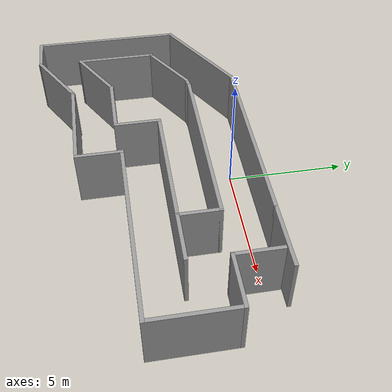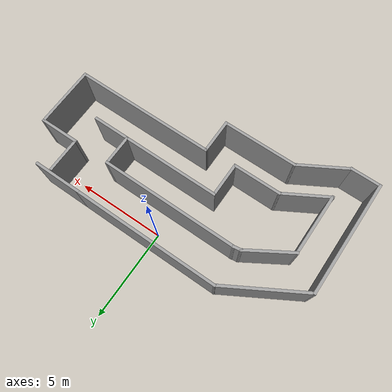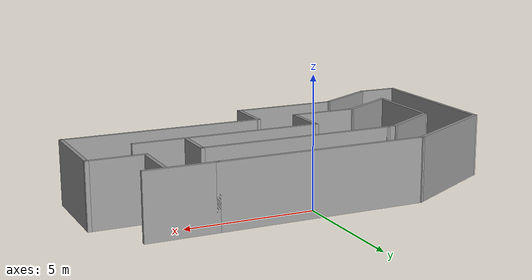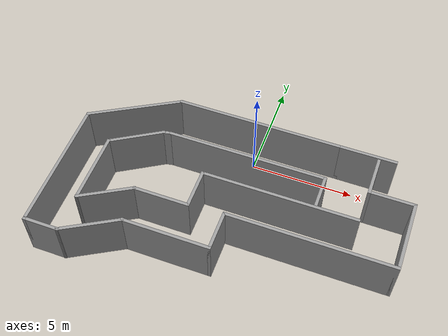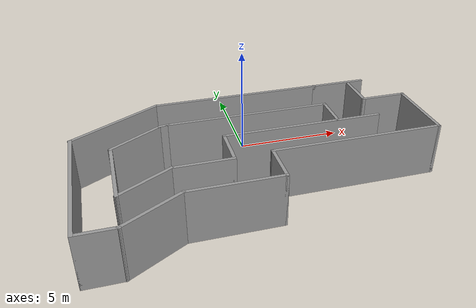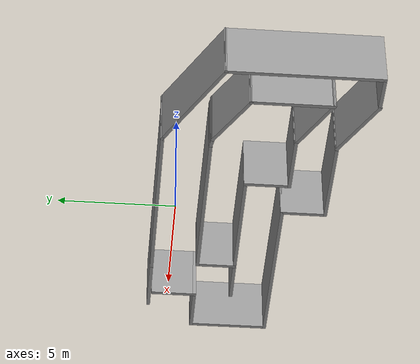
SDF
<sdf version='1.6'>
    <model name='Circuit_ql_2'>
      <pose frame=''>-0.070869 -3.52461 0 0 -0 0</pose>
      <link name='Wall_24'>
        <collision name='Wall_24_Collision'>
          <geometry>
            <box>
              <size>8.25 0.15 2.5</size>
            </box>
          </geometry>
          <pose frame=''>0 0 1.25 0 -0 0</pose>
          <max_contacts>10</max_contacts>
          <surface>
            <contact>
              <ode/>
            </contact>
            <bounce/>
            <friction>
              <torsional>
                <ode/>
              </torsional>
              <ode/>
            </friction>
          </surface>
        </collision>
        <visual name='Wall_24_Visual'>
          <pose frame=''>0 0 1.25 0 -0 0</pose>
          <geometry>
            <box>
              <size>8.25 0.15 2.5</size>
            </box>
          </geometry>
          <material>
            <script>
              <uri>file://media/materials/scripts/gazebo.material</uri>
              <name>Gazebo/Grey</name>
            </script>
            <ambient>1 1 1 1</ambient>
          </material>
        </visual>
        <pose frame=''>0.038358 4.325 0 0 -0 0</pose>
        <self_collide>0</self_collide>
        <kinematic>0</kinematic>
        <gravity>1</gravity>
      </link>
      <link name='Wall_28'>
        <collision name='Wall_28_Collision'>
          <geometry>
            <box>
              <size>4.75 0.15 2.5</size>
            </box>
          </geometry>
          <pose frame=''>0 0 1.25 0 -0 0</pose>
          <max_contacts>10</max_contacts>
          <surface>
            <contact>
              <ode/>
            </contact>
            <bounce/>
            <friction>
              <torsional>
                <ode/>
              </torsional>
              <ode/>
            </friction>
          </surface>
        </collision>
        <visual name='Wall_28_Visual'>
          <pose frame=''>0 0 1.25 0 -0 0</pose>
          <geometry>
            <box>
              <size>4.75 0.15 2.5</size>
            </box>
          </geometry>
          <material>
            <script>
              <uri>file://media/materials/scripts/gazebo.material</uri>
              <name>Gazebo/Grey</name>
            </script>
            <ambient>1 1 1 1</ambient>
          </material>
        </visual>
        <pose frame=''>-6.0035 3.175 0 0 0 -2.61799</pose>
        <self_collide>0</self_collide>
        <kinematic>0</kinematic>
        <gravity>1</gravity>
      </link>
      <link name='Wall_39'>
        <collision name='Wall_39_Collision'>
          <geometry>
            <box>
              <size>2.75 0.15 2.5</size>
            </box>
          </geometry>
          <pose frame=''>0 0 1.25 0 -0 0</pose>
          <max_contacts>10</max_contacts>
          <surface>
            <contact>
              <ode/>
            </contact>
            <bounce/>
            <friction>
              <torsional>
                <ode/>
              </torsional>
              <ode/>
            </friction>
          </surface>
        </collision>
        <visual name='Wall_39_Visual'>
          <pose frame=''>0 0 1.25 0 -0 0</pose>
          <geometry>
            <box>
              <size>2.75 0.15 2.5</size>
            </box>
          </geometry>
          <material>
            <script>
              <uri>file://media/materials/scripts/gazebo.material</uri>
              <name>Gazebo/Grey</name>
            </script>
            <ambient>1 1 1 1</ambient>
          </material>
        </visual>
        <pose frame=''>5.38836 4.325 0 0 -0 0</pose>
        <self_collide>0</self_collide>
        <kinematic>0</kinematic>
        <gravity>1</gravity>
      </link>
      <link name='Wall_41'>
        <collision name='Wall_41_Collision'>
          <geometry>
            <box>
              <size>6.5 0.15 2.5</size>
            </box>
          </geometry>
          <pose frame=''>0 0 1.25 0 -0 0</pose>
          <max_contacts>10</max_contacts>
          <surface>
            <contact>
              <ode/>
            </contact>
            <bounce/>
            <friction>
              <torsional>
                <ode/>
              </torsional>
              <ode/>
            </friction>
          </surface>
        </collision>
        <visual name='Wall_41_Visual'>
          <pose frame=''>0 0 1.25 0 -0 0</pose>
          <geometry>
            <box>
              <size>6.5 0.15 2.5</size>
            </box>
          </geometry>
          <material>
            <script>
              <uri>file://media/materials/scripts/gazebo.material</uri>
              <name>Gazebo/Grey</name>
            </script>
            <ambient>1 1 1 1</ambient>
          </material>
        </visual>
        <pose frame=''>-7.99536 -1.15 0 0 0 -1.5708</pose>
        <self_collide>0</self_collide>
        <kinematic>0</kinematic>
        <gravity>1</gravity>
      </link>
      <link name='Wall_46'>
        <collision name='Wall_46_Collision'>
          <geometry>
            <box>
              <size>2.79081 0.15 2.5</size>
            </box>
          </geometry>
          <pose frame=''>0 0 1.25 0 -0 0</pose>
          <max_contacts>10</max_contacts>
          <surface>
            <contact>
              <ode/>
            </contact>
            <bounce/>
            <friction>
              <torsional>
                <ode/>
              </torsional>
              <ode/>
            </friction>
          </surface>
        </collision>
        <visual name='Wall_46_Visual'>
          <pose frame=''>0 0 1.25 0 -0 0</pose>
          <geometry>
            <box>
              <size>2.79081 0.15 2.5</size>
            </box>
          </geometry>
          <material>
            <script>
              <uri>file://media/materials/scripts/gazebo.material</uri>
              <name>Gazebo/Grey</name>
            </script>
            <ambient>1 1 1 1</ambient>
          </material>
        </visual>
        <pose frame=''>-5.23485 1.56227 0 0 -0 0.549772</pose>
        <self_collide>0</self_collide>
        <kinematic>0</kinematic>
        <gravity>1</gravity>
      </link>
      <link name='Wall_57'>
        <collision name='Wall_57_Collision'>
          <geometry>
            <box>
              <size>3.5 0.15 2.5</size>
            </box>
          </geometry>
          <pose frame=''>0 0 1.25 0 -0 0</pose>
          <max_contacts>10</max_contacts>
          <surface>
            <contact>
              <ode/>
            </contact>
            <bounce/>
            <friction>
              <torsional>
                <ode/>
              </torsional>
              <ode/>
            </friction>
          </surface>
        </collision>
        <visual name='Wall_57_Visual'>
          <pose frame=''>0 0 1.25 0 -0 0</pose>
          <geometry>
            <box>
              <size>3.5 0.15 2.5</size>
            </box>
          </geometry>
          <material>
            <script>
              <uri>file://media/materials/scripts/gazebo.material</uri>
              <name>Gazebo/Grey</name>
            </script>
            <ambient>1 1 1 1</ambient>
          </material>
        </visual>
        <pose frame=''>-6.36068 -0.802628 0 0 0 -1.5708</pose>
        <self_collide>0</self_collide>
        <kinematic>0</kinematic>
        <gravity>1</gravity>
      </link>
      <link name='Wall_58'>
        <collision name='Wall_58_Collision'>
          <geometry>
            <box>
              <size>2.75 0.15 2.5</size>
            </box>
          </geometry>
          <pose frame=''>0 0 1.25 0 -0 0</pose>
          <max_contacts>10</max_contacts>
          <surface>
            <contact>
              <ode/>
            </contact>
            <bounce/>
            <friction>
              <torsional>
                <ode/>
              </torsional>
              <ode/>
            </friction>
          </surface>
        </collision>
        <visual name='Wall_58_Visual'>
          <pose frame=''>0 0 1.25 0 -0 0</pose>
          <geometry>
            <box>
              <size>2.75 0.15 2.5</size>
            </box>
          </geometry>
          <material>
            <script>
              <uri>file://media/materials/scripts/gazebo.material</uri>
              <name>Gazebo/Grey</name>
            </script>
            <ambient>1 1 1 1</ambient>
          </material>
        </visual>
        <pose frame=''>-5.23485 -1.82763 0 0 -0 0.523599</pose>
        <self_collide>0</self_collide>
        <kinematic>0</kinematic>
        <gravity>1</gravity>
      </link>
      <link name='Wall_60'>
        <collision name='Wall_60_Collision'>
          <geometry>
            <box>
              <size>1.75 0.15 2.5</size>
            </box>
          </geometry>
          <pose frame=''>0 0 1.25 0 -0 0</pose>
          <max_contacts>10</max_contacts>
          <surface>
            <contact>
              <ode/>
            </contact>
            <bounce/>
            <friction>
              <torsional>
                <ode/>
              </torsional>
              <ode/>
            </friction>
          </surface>
        </collision>
        <visual name='Wall_60_Visual'>
          <pose frame=''>0 0 1.25 0 -0 0</pose>
          <geometry>
            <box>
              <size>1.75 0.15 2.5</size>
            </box>
          </geometry>
          <material>
            <script>
              <uri>file://media/materials/scripts/gazebo.material</uri>
              <name>Gazebo/Grey</name>
            </script>
            <ambient>1 1 1 1</ambient>
          </material>
        </visual>
        <pose frame=''>-7.19536 -4.325 0 0 -0 0</pose>
        <self_collide>0</self_collide>
        <kinematic>0</kinematic>
        <gravity>1</gravity>
      </link>
      <link name='Wall_61'>
        <collision name='Wall_61_Collision'>
          <geometry>
            <box>
              <size>3 0.15 2.5</size>
            </box>
          </geometry>
          <pose frame=''>0 0 1.25 0 -0 0</pose>
          <max_contacts>10</max_contacts>
          <surface>
            <contact>
              <ode/>
            </contact>
            <bounce/>
            <friction>
              <torsional>
                <ode/>
              </torsional>
              <ode/>
            </friction>
          </surface>
        </collision>
        <visual name='Wall_61_Visual'>
          <pose frame=''>0 0 1.25 0 -0 0</pose>
          <geometry>
            <box>
              <size>3 0.15 2.5</size>
            </box>
          </geometry>
          <material>
            <script>
              <uri>file://media/materials/scripts/gazebo.material</uri>
              <name>Gazebo/Grey</name>
            </script>
            <ambient>1 1 1 1</ambient>
          </material>
        </visual>
        <pose frame=''>-5.16127 -3.6125 0 0 -0 0.523599</pose>
        <self_collide>0</self_collide>
        <kinematic>0</kinematic>
        <gravity>1</gravity>
      </link>
      <link name='Wall_62'>
        <collision name='Wall_62_Collision'>
          <geometry>
            <box>
              <size>4.25 0.15 2.5</size>
            </box>
          </geometry>
          <pose frame=''>0 0 1.25 0 -0 0</pose>
          <max_contacts>10</max_contacts>
          <surface>
            <contact>
              <ode/>
            </contact>
            <bounce/>
            <friction>
              <torsional>
                <ode/>
              </torsional>
              <ode/>
            </friction>
          </surface>
        </collision>
        <visual name='Wall_62_Visual'>
          <pose frame=''>0 0 1.25 0 -0 0</pose>
          <geometry>
            <box>
              <size>4.25 0.15 2.5</size>
            </box>
          </geometry>
          <material>
            <script>
              <uri>file://media/materials/scripts/gazebo.material</uri>
              <name>Gazebo/Grey</name>
            </script>
            <ambient>1 1 1 1</ambient>
          </material>
        </visual>
        <pose frame=''>-1.87719 -2.9 0 0 -0 0</pose>
        <self_collide>0</self_collide>
        <kinematic>0</kinematic>
        <gravity>1</gravity>
      </link>
      <link name='Wall_64'>
        <collision name='Wall_64_Collision'>
          <geometry>
            <box>
              <size>2.75 0.15 2.5</size>
            </box>
          </geometry>
          <pose frame=''>0 0 1.25 0 -0 0</pose>
          <max_contacts>10</max_contacts>
          <surface>
            <contact>
              <ode/>
            </contact>
            <bounce/>
            <friction>
              <torsional>
                <ode/>
              </torsional>
              <ode/>
            </friction>
          </surface>
        </collision>
        <visual name='Wall_64_Visual'>
          <pose frame=''>0 0 1.25 0 -0 0</pose>
          <geometry>
            <box>
              <size>2.75 0.15 2.5</size>
            </box>
          </geometry>
          <material>
            <script>
              <uri>file://media/materials/scripts/gazebo.material</uri>
              <name>Gazebo/Grey</name>
            </script>
            <ambient>1 1 1 1</ambient>
          </material>
        </visual>
        <pose frame=''>-2.80901 -1.17763 0 0 -0 0</pose>
        <self_collide>0</self_collide>
        <kinematic>0</kinematic>
        <gravity>1</gravity>
      </link>
      <link name='Wall_67'>
        <collision name='Wall_67_Collision'>
          <geometry>
            <box>
              <size>2 0.15 2.5</size>
            </box>
          </geometry>
          <pose frame=''>0 0 1.25 0 -0 0</pose>
          <max_contacts>10</max_contacts>
          <surface>
            <contact>
              <ode/>
            </contact>
            <bounce/>
            <friction>
              <torsional>
                <ode/>
              </torsional>
              <ode/>
            </friction>
          </surface>
        </collision>
        <visual name='Wall_67_Visual'>
          <pose frame=''>0 0 1.25 0 -0 0</pose>
          <geometry>
            <box>
              <size>2 0.15 2.5</size>
            </box>
          </geometry>
          <material>
            <script>
              <uri>file://media/materials/scripts/gazebo.material</uri>
              <name>Gazebo/Grey</name>
            </script>
            <ambient>1 1 1 1</ambient>
          </material>
        </visual>
        <pose frame=''>0.172813 -1.975 0 0 -0 1.5708</pose>
        <self_collide>0</self_collide>
        <kinematic>0</kinematic>
        <gravity>1</gravity>
      </link>
      <link name='Wall_68'>
        <collision name='Wall_68_Collision'>
          <geometry>
            <box>
              <size>8 0.15 2.5</size>
            </box>
          </geometry>
          <pose frame=''>0 0 1.25 0 -0 0</pose>
          <max_contacts>10</max_contacts>
          <surface>
            <contact>
              <ode/>
            </contact>
            <bounce/>
            <friction>
              <torsional>
                <ode/>
              </torsional>
              <ode/>
            </friction>
          </surface>
        </collision>
        <visual name='Wall_68_Visual'>
          <pose frame=''>0 0 1.25 0 -0 0</pose>
          <geometry>
            <box>
              <size>8 0.15 2.5</size>
            </box>
          </geometry>
          <material>
            <script>
              <uri>file://media/materials/scripts/gazebo.material</uri>
              <name>Gazebo/Grey</name>
            </script>
            <ambient>1 1 1 1</ambient>
          </material>
        </visual>
        <pose frame=''>4.09781 -1.05 0 0 -0 0</pose>
        <self_collide>0</self_collide>
        <kinematic>0</kinematic>
        <gravity>1</gravity>
      </link>
      <link name='Wall_72'>
        <collision name='Wall_72_Collision'>
          <geometry>
            <box>
              <size>2 0.15 2.5</size>
            </box>
          </geometry>
          <pose frame=''>0 0 1.25 0 -0 0</pose>
          <max_contacts>10</max_contacts>
          <surface>
            <contact>
              <ode/>
            </contact>
            <bounce/>
            <friction>
              <torsional>
                <ode/>
              </torsional>
              <ode/>
            </friction>
          </surface>
        </collision>
        <visual name='Wall_72_Visual'>
          <pose frame=''>0 0 1.25 0 -0 0</pose>
          <geometry>
            <box>
              <size>2 0.15 2.5</size>
            </box>
          </geometry>
          <material>
            <script>
              <uri>file://media/materials/scripts/gazebo.material</uri>
              <name>Gazebo/Grey</name>
            </script>
            <ambient>1 1 1 1</ambient>
          </material>
        </visual>
        <pose frame=''>-1.50901 -0.252628 0 0 -0 1.5708</pose>
        <self_collide>0</self_collide>
        <kinematic>0</kinematic>
        <gravity>1</gravity>
      </link>
      <link name='Wall_76'>
        <collision name='Wall_76_Collision'>
          <geometry>
            <box>
              <size>3.5 0.15 2.5</size>
            </box>
          </geometry>
          <pose frame=''>0 0 1.25 0 -0 0</pose>
          <max_contacts>10</max_contacts>
          <surface>
            <contact>
              <ode/>
            </contact>
            <bounce/>
            <friction>
              <torsional>
                <ode/>
              </torsional>
              <ode/>
            </friction>
          </surface>
        </collision>
        <visual name='Wall_76_Visual'>
          <pose frame=''>0 0 1.25 0 -0 0</pose>
          <geometry>
            <box>
              <size>3.5 0.15 2.5</size>
            </box>
          </geometry>
          <material>
            <script>
              <uri>file://media/materials/scripts/gazebo.material</uri>
              <name>Gazebo/Grey</name>
            </script>
            <ambient>1 1 1 1</ambient>
          </material>
        </visual>
        <pose frame=''>8.02281 0.625 0 0 -0 1.5708</pose>
        <self_collide>0</self_collide>
        <kinematic>0</kinematic>
        <gravity>1</gravity>
      </link>
      <link name='Wall_78'>
        <collision name='Wall_78_Collision'>
          <geometry>
            <box>
              <size>7.5 0.15 2.5</size>
            </box>
          </geometry>
          <pose frame=''>0 0 1.25 0 -0 0</pose>
          <max_contacts>10</max_contacts>
          <surface>
            <contact>
              <ode/>
            </contact>
            <bounce/>
            <friction>
              <torsional>
                <ode/>
              </torsional>
              <ode/>
            </friction>
          </surface>
        </collision>
        <visual name='Wall_78_Visual'>
          <pose frame=''>0 0 1.25 0 -0 0</pose>
          <geometry>
            <box>
              <size>7.5 0.15 2.5</size>
            </box>
          </geometry>
          <material>
            <script>
              <uri>file://media/materials/scripts/gazebo.material</uri>
              <name>Gazebo/Grey</name>
            </script>
            <ambient>1 1 1 1</ambient>
          </material>
        </visual>
        <pose frame=''>2.16599 0.672372 0 0 -0 0</pose>
        <self_collide>0</self_collide>
        <kinematic>0</kinematic>
        <gravity>1</gravity>
      </link>
      <link name='Wall_80'>
        <collision name='Wall_80_Collision'>
          <geometry>
            <box>
              <size>2.25 0.15 2.5</size>
            </box>
          </geometry>
          <pose frame=''>0 0 1.25 0 -0 0</pose>
          <max_contacts>10</max_contacts>
          <surface>
            <contact>
              <ode/>
            </contact>
            <bounce/>
            <friction>
              <torsional>
                <ode/>
              </torsional>
              <ode/>
            </friction>
          </surface>
        </collision>
        <visual name='Wall_80_Visual'>
          <pose frame=''>0 0 1.25 0 -0 0</pose>
          <geometry>
            <box>
              <size>2.25 0.15 2.5</size>
            </box>
          </geometry>
          <material>
            <script>
              <uri>file://media/materials/scripts/gazebo.material</uri>
              <name>Gazebo/Grey</name>
            </script>
            <ambient>1 1 1 1</ambient>
          </material>
        </visual>
        <pose frame=''>6.97281 2.3 0 0 -0 3.14159</pose>
        <self_collide>0</self_collide>
        <kinematic>0</kinematic>
        <gravity>1</gravity>
      </link>
      <link name='Wall_82'>
        <collision name='Wall_82_Collision'>
          <geometry>
            <box>
              <size>1.75 0.15 2.5</size>
            </box>
          </geometry>
          <pose frame=''>0 0 1.25 0 -0 0</pose>
          <max_contacts>10</max_contacts>
          <surface>
            <contact>
              <ode/>
            </contact>
            <bounce/>
            <friction>
              <torsional>
                <ode/>
              </torsional>
              <ode/>
            </friction>
          </surface>
        </collision>
        <visual name='Wall_82_Visual'>
          <pose frame=''>0 0 1.25 0 -0 0</pose>
          <geometry>
            <box>
              <size>1.75 0.15 2.5</size>
            </box>
          </geometry>
          <material>
            <script>
              <uri>file://media/materials/scripts/gazebo.material</uri>
              <name>Gazebo/Grey</name>
            </script>
            <ambient>1 1 1 1</ambient>
          </material>
        </visual>
        <pose frame=''>3.8538 1.51277 0 0 -0 1.5708</pose>
        <self_collide>0</self_collide>
        <kinematic>0</kinematic>
        <gravity>1</gravity>
      </link>
      <link name='Wall_83'>
        <collision name='Wall_83_Collision'>
          <geometry>
            <box>
              <size>7.75 0.15 2.5</size>
            </box>
          </geometry>
          <pose frame=''>0 0 1.25 0 -0 0</pose>
          <max_contacts>10</max_contacts>
          <surface>
            <contact>
              <ode/>
            </contact>
            <bounce/>
            <friction>
              <torsional>
                <ode/>
              </torsional>
              <ode/>
            </friction>
          </surface>
        </collision>
        <visual name='Wall_83_Visual'>
          <pose frame=''>0 0 1.25 0 -0 0</pose>
          <geometry>
            <box>
              <size>7.75 0.15 2.5</size>
            </box>
          </geometry>
          <material>
            <script>
              <uri>file://media/materials/scripts/gazebo.material</uri>
              <name>Gazebo/Grey</name>
            </script>
            <ambient>1 1 1 1</ambient>
          </material>
        </visual>
        <pose frame=''>0.053797 2.31277 0 0 -0 3.14159</pose>
        <self_collide>0</self_collide>
        <kinematic>0</kinematic>
        <gravity>1</gravity>
      </link>
      <link name='Wall_84'>
        <collision name='Wall_84_Collision'>
          <geometry>
            <box>
              <size>0.517836 0.15 2.5</size>
            </box>
          </geometry>
          <pose frame=''>0 0 1.25 0 -0 0</pose>
          <max_contacts>10</max_contacts>
          <surface>
            <contact>
              <ode/>
            </contact>
            <bounce/>
            <friction>
              <torsional>
                <ode/>
              </torsional>
              <ode/>
            </friction>
          </surface>
        </collision>
        <visual name='Wall_84_Visual'>
          <pose frame=''>0 0 1.25 0 -0 0</pose>
          <geometry>
            <box>
              <size>0.517836 0.15 2.5</size>
            </box>
          </geometry>
          <material>
            <script>
              <uri>file://media/materials/scripts/gazebo.material</uri>
              <name>Gazebo/Grey</name>
            </script>
            <ambient>1 1 1 1</ambient>
          </material>
        </visual>
        <pose frame=''>-3.92761 2.28247 0 0 0 -2.9761</pose>
        <self_collide>0</self_collide>
        <kinematic>0</kinematic>
        <gravity>1</gravity>
      </link>
      <link name='Wall_86'>
        <collision name='Wall_86_Collision'>
          <geometry>
            <box>
              <size>2 0.15 2.5</size>
            </box>
          </geometry>
          <pose frame=''>0 0 1.25 0 -0 0</pose>
          <max_contacts>10</max_contacts>
          <surface>
            <contact>
              <ode/>
            </contact>
            <bounce/>
            <friction>
              <torsional>
                <ode/>
              </torsional>
              <ode/>
            </friction>
          </surface>
        </collision>
        <visual name='Wall_86_Visual'>
          <pose frame=''>0 0 1.25 0 -0 0</pose>
          <geometry>
            <box>
              <size>2 0.15 2.5</size>
            </box>
          </geometry>
          <material>
            <script>
              <uri>file://media/materials/scripts/gazebo.material</uri>
              <name>Gazebo/Grey</name>
            </script>
            <ambient>1 1 1 1</ambient>
          </material>
        </visual>
        <pose frame=''>5.92281 3.225 0 0 -0 1.5708</pose>
        <self_collide>0</self_collide>
        <kinematic>0</kinematic>
        <gravity>1</gravity>
      </link>
      <static>1</static>
    </model>
</sdf>
